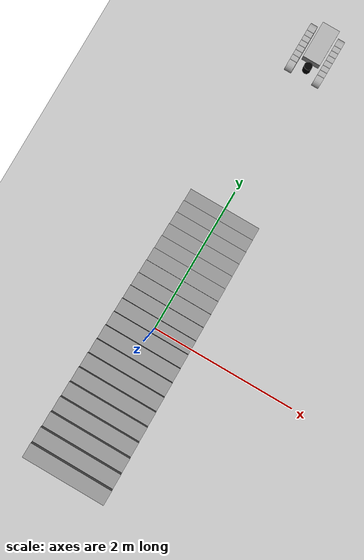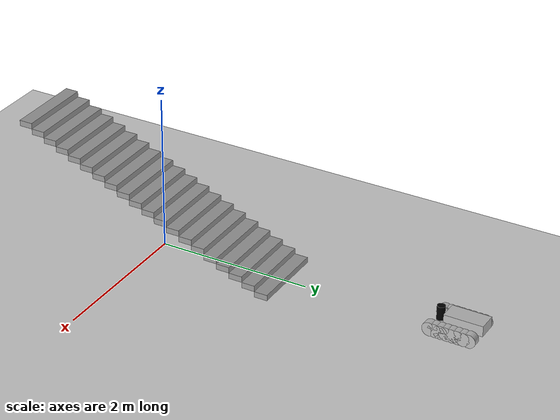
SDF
<?xml version="1.0" ?>
<sdf version="1.6">
    <world name="default">
        <gui>
            <plugin name="keyboard" filename="libKeyboardGUIPlugin.so"/>
        </gui>

        <include>
            <uri>model://sun</uri>
        </include>

        <include>
            <uri>model://ground_plane</uri>
        </include>

        <model name="wheel_tracked">
            <pose frame=''>0 4 0.1 0 0 -1.5708</pose>
            <link name='base_link'>
                <pose frame=''>0 0 0 0 -0 0</pose>
                <inertial>
                    <pose frame=''>-0.122 0 0.118 1.5708 -0 0</pose>
                    <mass>13.14</mass>
                    <inertia>
                        <ixx>0.10019</ixx>
                        <ixy>0</ixy>
                        <ixz>0</ixz>
                        <iyy>0.345043</iyy>
                        <iyz>0</iyz>
                        <izz>0.302044</izz>
                    </inertia>
                </inertial>
                <collision name='base_link_collision'>
                    <pose frame=''>-0.122 0 0.118 0 -0 0</pose>
                    <geometry>
                        <box>
                            <size>0.50017 0.24093 0.139</size>
                        </box>
                    </geometry>
                </collision>
                <visual name='base_link_visual'>
                    <pose frame=''>-0.122 0 0.118 0 -0 0</pose>
                    <geometry>
                        <box>
                            <size>0.50017 0.24093 0.139</size>
                        </box>
                    </geometry>
                </visual>
                <self_collide>0</self_collide>
                <gravity>1</gravity>
                <kinematic>0</kinematic>
            </link>

            <link name='left_track'>
                <pose frame=''>0 0.1985 0 0 -0 0</pose>
                <inertial>
                    <mass>2.06</mass>
                    <inertia>
                        <ixx>0.002731</ixx>
                        <ixy>0</ixy>
                        <ixz>0</ixz>
                        <iyy>0.032554</iyy>
                        <iyz>0</iyz>
                        <izz>0.031391</izz>
                    </inertia>
                </inertial>
                <collision name='left_track_collision'>
                    <pose frame=''>0 0 0.01855 1.5708 -0 1.5708</pose>
                    <geometry>
                        <box>
                            <size>0.009728 0.018094 0.05</size>
                        </box>
                    </geometry>
                    <surface>
                        <friction>
                            <ode>
                                <mu>0.5</mu>
                                <mu2>3.19858</mu2>
                            </ode>
                        </friction>
                        <contact>
                            <collide_bitmask>0</collide_bitmask>
                        </contact>
                    </surface>
                </collision>
            </link>
            <joint name='left_track_j' type='revolute'>
                <child>left_track</child>
                <parent>base_link</parent>
                <axis>
                    <xyz>0 1 0</xyz>
                    <limit>
                        <lower>0</lower>
                        <upper>0</upper>
                        <effort>0</effort>
                        <velocity>4</velocity>
                    </limit>
                    <use_parent_model_frame>1</use_parent_model_frame>
                </axis>
            </joint>
            <link name='left_track_wheel1'>
                <pose frame=''>0.25 0.1985 0.01855 0 -0 0</pose>
                <inertial>
                    <mass>0.5</mass>
                    <inertia>
                        <ixx>0.001</ixx>
                        <ixy>0</ixy>
                        <ixz>0</ixz>
                        <iyy>0.001</iyy>
                        <iyz>0</iyz>
                        <izz>0.001</izz>
                    </inertia>
                </inertial>
                <collision name='left_track_wheel1_collision'>
                    <pose frame=''>0 0 0 1.5708 -0 0</pose>
                    <geometry>
                        <cylinder>
                            <length>0.09728</length>
                            <radius>0.09047</radius>
                        </cylinder>
                    </geometry>
                    <surface>
                        <friction>
                            <ode>
                                <mu>0.5</mu>
                                <mu2>3.19858</mu2>
                            </ode>
                        </friction>
                    </surface>
                </collision>
                <visual name='left_track_wheel1_visual'>
                    <pose frame=''>0 0 0 1.5708 -0 0</pose>
                    <geometry>
                        <cylinder>
                            <length>0.09728</length>
                            <radius>0.09047</radius>
                        </cylinder>
                    </geometry>
                </visual>
            </link>
            <joint name='left_track_wheel1_j' type='revolute'>
                <child>left_track_wheel1</child>
                <parent>left_track</parent>
                <axis>
                    <xyz>0 1 0</xyz>
                    <limit>
                        <lower>-1e+16</lower>
                        <upper>1e+16</upper>
                    </limit>
                    <use_parent_model_frame>1</use_parent_model_frame>
                </axis>
            </joint>
            <link name='left_track_wheel2'>
                <pose frame=''>0.1786 0.1985 0.01855 0 -0 0</pose>
                <inertial>
                    <mass>0.5</mass>
                    <inertia>
                        <ixx>0.001</ixx>
                        <ixy>0</ixy>
                        <ixz>0</ixz>
                        <iyy>0.001</iyy>
                        <iyz>0</iyz>
                        <izz>0.001</izz>
                    </inertia>
                </inertial>
                <collision name='left_track_wheel2_collision'>
                    <pose frame=''>0 0 0 1.5708 -0 0</pose>
                    <geometry>
                        <cylinder>
                            <length>0.09728</length>
                            <radius>0.09047</radius>
                        </cylinder>
                    </geometry>
                    <surface>
                        <friction>
                            <ode>
                                <mu>0.5</mu>
                                <mu2>3.19858</mu2>
                            </ode>
                        </friction>
                    </surface>
                </collision>
                <visual name='left_track_wheel2_visual'>
                    <pose frame=''>0 0 0 1.5708 -0 0</pose>
                    <geometry>
                        <cylinder>
                            <length>0.09728</length>
                            <radius>0.09047</radius>
                        </cylinder>
                    </geometry>
                </visual>
            </link>
            <joint name='left_track_wheel2_j' type='revolute'>
                <child>left_track_wheel2</child>
                <parent>left_track</parent>
                <axis>
                    <xyz>0 1 0</xyz>
                    <limit>
                        <lower>-1e+16</lower>
                        <upper>1e+16</upper>
                    </limit>
                    <use_parent_model_frame>1</use_parent_model_frame>
                </axis>
            </joint>
            <link name='left_track_wheel3'>
                <pose frame=''>0.1072 0.1985 0.01855 0 -0 0</pose>
                <inertial>
                    <mass>0.5</mass>
                    <inertia>
                        <ixx>0.001</ixx>
                        <ixy>0</ixy>
                        <ixz>0</ixz>
                        <iyy>0.001</iyy>
                        <iyz>0</iyz>
                        <izz>0.001</izz>
                    </inertia>
                </inertial>
                <collision name='left_track_wheel3_collision'>
                    <pose frame=''>0 0 0 1.5708 -0 0</pose>
                    <geometry>
                        <cylinder>
                            <length>0.09728</length>
                            <radius>0.09047</radius>
                        </cylinder>
                    </geometry>
                    <surface>
                        <friction>
                            <ode>
                                <mu>0.5</mu>
                                <mu2>3.19858</mu2>
                            </ode>
                        </friction>
                    </surface>
                </collision>
                <visual name='left_track_wheel3_visual'>
                    <pose frame=''>0 0 0 1.5708 -0 0</pose>
                    <geometry>
                        <cylinder>
                            <length>0.09728</length>
                            <radius>0.09047</radius>
                        </cylinder>
                    </geometry>
                </visual>
            </link>
            <joint name='left_track_wheel3_j' type='revolute'>
                <child>left_track_wheel3</child>
                <parent>left_track</parent>
                <axis>
                    <xyz>0 1 0</xyz>
                    <limit>
                        <lower>-1e+16</lower>
                        <upper>1e+16</upper>
                    </limit>
                    <use_parent_model_frame>1</use_parent_model_frame>
                </axis>
            </joint>
            <link name='left_track_wheel4'>
                <pose frame=''>-0.25 0.1985 0.01855 0 -0 0</pose>
                <inertial>
                    <mass>0.5</mass>
                    <inertia>
                        <ixx>0.001</ixx>
                        <ixy>0</ixy>
                        <ixz>0</ixz>
                        <iyy>0.001</iyy>
                        <iyz>0</iyz>
                        <izz>0.001</izz>
                    </inertia>
                </inertial>
                <collision name='left_track_wheel4_collision'>
                    <pose frame=''>0 0 0 1.5708 -0 0</pose>
                    <geometry>
                        <cylinder>
                            <length>0.09728</length>
                            <radius>0.09047</radius>
                        </cylinder>
                    </geometry>
                    <surface>
                        <friction>
                            <ode>
                                <mu>0.5</mu>
                                <mu2>3.19858</mu2>
                            </ode>
                        </friction>
                    </surface>
                </collision>
                <visual name='left_track_wheel4_visual'>
                    <pose frame=''>0 0 0 1.5708 -0 0</pose>
                    <geometry>
                        <cylinder>
                            <length>0.09728</length>
                            <radius>0.09047</radius>
                        </cylinder>
                    </geometry>
                </visual>
            </link>
            <joint name='left_track_wheel4_j' type='revolute'>
                <child>left_track_wheel4</child>
                <parent>left_track</parent>
                <axis>
                    <xyz>0 1 0</xyz>
                    <limit>
                        <lower>-1e+16</lower>
                        <upper>1e+16</upper>
                    </limit>
                    <use_parent_model_frame>1</use_parent_model_frame>
                </axis>
            </joint>
            <link name='left_track_wheel5'>
                <pose frame=''>-0.0358 0.1985 0.01855 0 -0 0</pose>
                <inertial>
                    <mass>0.5</mass>
                    <inertia>
                        <ixx>0.001</ixx>
                        <ixy>0</ixy>
                        <ixz>0</ixz>
                        <iyy>0.001</iyy>
                        <iyz>0</iyz>
                        <izz>0.001</izz>
                    </inertia>
                </inertial>
                <collision name='left_track_wheel5_collision'>
                    <pose frame=''>0 0 0 1.5708 -0 0</pose>
                    <geometry>
                        <cylinder>
                            <length>0.09728</length>
                            <radius>0.09047</radius>
                        </cylinder>
                    </geometry>
                    <surface>
                        <friction>
                            <ode>
                                <mu>0.5</mu>
                                <mu2>3.19858</mu2>
                            </ode>
                        </friction>
                    </surface>
                </collision>
                <visual name='left_track_wheel5_visual'>
                    <pose frame=''>0 0 0 1.5708 -0 0</pose>
                    <geometry>
                        <cylinder>
                            <length>0.09728</length>
                            <radius>0.09047</radius>
                        </cylinder>
                    </geometry>
                </visual>
            </link>
            <joint name='left_track_wheel5_j' type='revolute'>
                <child>left_track_wheel5</child>
                <parent>left_track</parent>
                <axis>
                    <xyz>0 1 0</xyz>
                    <limit>
                        <lower>-1e+16</lower>
                        <upper>1e+16</upper>
                    </limit>
                    <use_parent_model_frame>1</use_parent_model_frame>
                </axis>
            </joint>
            <link name='left_track_wheel6'>
                <pose frame=''>-0.1072 0.1985 0.01855 0 -0 0</pose>
                <inertial>
                    <mass>0.5</mass>
                    <inertia>
                        <ixx>0.001</ixx>
                        <ixy>0</ixy>
                        <ixz>0</ixz>
                        <iyy>0.001</iyy>
                        <iyz>0</iyz>
                        <izz>0.001</izz>
                    </inertia>
                </inertial>
                <collision name='left_track_wheel6_collision'>
                    <pose frame=''>0 0 0 1.5708 -0 0</pose>
                    <geometry>
                        <cylinder>
                            <length>0.09728</length>
                            <radius>0.09047</radius>
                        </cylinder>
                    </geometry>
                    <surface>
                        <friction>
                            <ode>
                                <mu>0.5</mu>
                                <mu2>3.19858</mu2>
                            </ode>
                        </friction>
                    </surface>
                </collision>
                <visual name='left_track_wheel6_visual'>
                    <pose frame=''>0 0 0 1.5708 -0 0</pose>
                    <geometry>
                        <cylinder>
                            <length>0.09728</length>
                            <radius>0.09047</radius>
                        </cylinder>
                    </geometry>
                </visual>
                <gravity>1</gravity>
                <velocity_decay/>
                <kinematic>0</kinematic>
            </link>
            <joint name='left_track_wheel6_j' type='revolute'>
                <child>left_track_wheel6</child>
                <parent>left_track</parent>
                <axis>
                    <xyz>0 1 0</xyz>
                    <limit>
                        <lower>-1e+16</lower>
                        <upper>1e+16</upper>
                    </limit>
                    <use_parent_model_frame>1</use_parent_model_frame>
                </axis>
            </joint>
            <link name='left_track_wheel7'>
                <pose frame=''>-0.1786 0.1985 0.01855 0 -0 0</pose>
                <inertial>
                    <mass>0.5</mass>
                    <inertia>
                        <ixx>0.001</ixx>
                        <ixy>0</ixy>
                        <ixz>0</ixz>
                        <iyy>0.001</iyy>
                        <iyz>0</iyz>
                        <izz>0.001</izz>
                    </inertia>
                </inertial>
                <collision name='left_track_wheel7_collision'>
                    <pose frame=''>0 0 0 1.5708 -0 0</pose>
                    <geometry>
                        <cylinder>
                            <length>0.09728</length>
                            <radius>0.09047</radius>
                        </cylinder>
                    </geometry>
                    <surface>
                        <friction>
                            <ode>
                                <mu>0.5</mu>
                                <mu2>3.19858</mu2>
                            </ode>
                        </friction>
                    </surface>
                </collision>
                <visual name='left_track_wheel7_visual'>
                    <pose frame=''>0 0 0 1.5708 -0 0</pose>
                    <geometry>
                        <cylinder>
                            <length>0.09728</length>
                            <radius>0.09047</radius>
                        </cylinder>
                    </geometry>
                </visual>
            </link>
            <joint name='left_track_wheel7_j' type='revolute'>
                <child>left_track_wheel7</child>
                <parent>left_track</parent>
                <axis>
                    <xyz>0 1 0</xyz>
                    <limit>
                        <lower>-1e+16</lower>
                        <upper>1e+16</upper>
                    </limit>
                    <use_parent_model_frame>1</use_parent_model_frame>
                </axis>
            </joint>
            <link name='left_track_wheel8'>
                <pose frame=''>0.0358 0.1985 0.01855 0 -0 0</pose>
                <inertial>
                    <mass>0.5</mass>
                    <inertia>
                        <ixx>0.001</ixx>
                        <ixy>0</ixy>
                        <ixz>0</ixz>
                        <iyy>0.001</iyy>
                        <iyz>0</iyz>
                        <izz>0.001</izz>
                    </inertia>
                </inertial>
                <collision name='left_track_wheel8_collision'>
                    <pose frame=''>0 0 0 1.5708 -0 0</pose>
                    <geometry>
                        <cylinder>
                            <length>0.09728</length>
                            <radius>0.09047</radius>
                        </cylinder>
                    </geometry>
                    <surface>
                        <friction>
                            <ode>
                                <mu>0.5</mu>
                                <mu2>3.19858</mu2>
                            </ode>
                        </friction>
                    </surface>
                </collision>
                <visual name='left_track_wheel8_visual'>
                    <pose frame=''>0 0 0 1.5708 -0 0</pose>
                    <geometry>
                        <cylinder>
                            <length>0.09728</length>
                            <radius>0.09047</radius>
                        </cylinder>
                    </geometry>
                </visual>
            </link>
            <joint name='left_track_wheel8_j' type='revolute'>
                <child>left_track_wheel8</child>
                <parent>left_track</parent>
                <axis>
                    <xyz>0 1 0</xyz>
                    <limit>
                        <lower>-1e+16</lower>
                        <upper>1e+16</upper>
                    </limit>
                    <use_parent_model_frame>1</use_parent_model_frame>
                </axis>
            </joint>

            <link name='right_track'>
                <pose frame=''>0 -0.1985 0 0 -0 0</pose>
                <inertial>
                    <mass>2.06</mass>
                    <inertia>
                        <ixx>0.002731</ixx>
                        <ixy>0</ixy>
                        <ixz>0</ixz>
                        <iyy>0.032554</iyy>
                        <iyz>0</iyz>
                        <izz>0.031391</izz>
                    </inertia>
                </inertial>
                <collision name='right_track_collision'>
                    <pose frame=''>0 0 0.01855 1.5708 -0 1.5708</pose>
                    <geometry>
                        <box>
                            <size>0.009728 0.018094 0.05</size>
                        </box>
                    </geometry>
                    <surface>
                        <friction>
                            <ode>
                                <mu>0.5</mu>
                                <mu2>3.19858</mu2>
                            </ode>
                        </friction>
                        <contact>
                            <collide_bitmask>0</collide_bitmask>
                        </contact>
                    </surface>
                </collision>
            </link>
            <joint name='right_track_j' type='revolute'>
                <child>right_track</child>
                <parent>base_link</parent>
                <axis>
                    <xyz>0 1 0</xyz>
                    <limit>
                        <lower>0</lower>
                        <upper>0</upper>
                        <effort>0</effort>
                        <velocity>4</velocity>
                    </limit>
                    <use_parent_model_frame>1</use_parent_model_frame>
                </axis>
            </joint>

            <link name='right_track_wheel1'>
                <pose frame=''>0.25 -0.1985 0.01855 0 -0 0</pose>
                <inertial>
                    <mass>0.5</mass>
                    <inertia>
                        <ixx>0.001</ixx>
                        <ixy>0</ixy>
                        <ixz>0</ixz>
                        <iyy>0.001</iyy>
                        <iyz>0</iyz>
                        <izz>0.001</izz>
                    </inertia>
                </inertial>
                <collision name='right_track_wheel1_collision'>
                    <pose frame=''>0 0 0 1.5708 -0 0</pose>
                    <geometry>
                        <cylinder>
                            <length>0.09728</length>
                            <radius>0.09047</radius>
                        </cylinder>
                    </geometry>
                    <surface>
                        <friction>
                            <ode>
                                <mu>0.5</mu>
                                <mu2>3.19858</mu2>
                            </ode>
                        </friction>
                    </surface>
                </collision>
                <visual name='right_track_wheel1_visual'>
                    <pose frame=''>0 0 0 1.5708 -0 0</pose>
                    <geometry>
                        <cylinder>
                            <length>0.09728</length>
                            <radius>0.09047</radius>
                        </cylinder>
                    </geometry>
                </visual>
            </link>
            <joint name='right_track_wheel1_j' type='revolute'>
                <child>right_track_wheel1</child>
                <parent>right_track</parent>
                <axis>
                    <xyz>0 1 0</xyz>
                    <limit>
                        <lower>-1e+16</lower>
                        <upper>1e+16</upper>
                    </limit>
                    <use_parent_model_frame>1</use_parent_model_frame>
                </axis>
            </joint>
            <link name='right_track_wheel2'>
                <pose frame=''>0.1786 -0.1985 0.01855 0 -0 0</pose>
                <inertial>
                    <mass>0.5</mass>
                    <inertia>
                        <ixx>0.001</ixx>
                        <ixy>0</ixy>
                        <ixz>0</ixz>
                        <iyy>0.001</iyy>
                        <iyz>0</iyz>
                        <izz>0.001</izz>
                    </inertia>
                </inertial>
                <collision name='right_track_wheel2_collision'>
                    <pose frame=''>0 0 0 1.5708 -0 0</pose>
                    <geometry>
                        <cylinder>
                            <length>0.09728</length>
                            <radius>0.09047</radius>
                        </cylinder>
                    </geometry>
                    <surface>
                        <friction>
                            <ode>
                                <mu>0.5</mu>
                                <mu2>3.19858</mu2>
                            </ode>
                        </friction>
                    </surface>
                </collision>
                <visual name='right_track_wheel2_visual'>
                    <pose frame=''>0 0 0 1.5708 -0 0</pose>
                    <geometry>
                        <cylinder>
                            <length>0.09728</length>
                            <radius>0.09047</radius>
                        </cylinder>
                    </geometry>
                </visual>
            </link>
            <joint name='right_track_wheel2_j' type='revolute'>
                <child>right_track_wheel2</child>
                <parent>right_track</parent>
                <axis>
                    <xyz>0 1 0</xyz>
                    <limit>
                        <lower>-1e+16</lower>
                        <upper>1e+16</upper>
                    </limit>
                    <use_parent_model_frame>1</use_parent_model_frame>
                </axis>
            </joint>
            <link name='right_track_wheel3'>
                <pose frame=''>0.1072 -0.1985 0.01855 0 -0 0</pose>
                <inertial>
                    <mass>0.5</mass>
                    <inertia>
                        <ixx>0.001</ixx>
                        <ixy>0</ixy>
                        <ixz>0</ixz>
                        <iyy>0.001</iyy>
                        <iyz>0</iyz>
                        <izz>0.001</izz>
                    </inertia>
                </inertial>
                <collision name='right_track_wheel3_collision'>
                    <pose frame=''>0 0 0 1.5708 -0 0</pose>
                    <geometry>
                        <cylinder>
                            <length>0.09728</length>
                            <radius>0.09047</radius>
                        </cylinder>
                    </geometry>
                    <surface>
                        <friction>
                            <ode>
                                <mu>0.5</mu>
                                <mu2>3.19858</mu2>
                            </ode>
                        </friction>
                    </surface>
                </collision>
                <visual name='right_track_wheel3_visual'>
                    <pose frame=''>0 0 0 1.5708 -0 0</pose>
                    <geometry>
                        <cylinder>
                            <length>0.09728</length>
                            <radius>0.09047</radius>
                        </cylinder>
                    </geometry>
                </visual>
            </link>
            <joint name='right_track_wheel3_j' type='revolute'>
                <child>right_track_wheel3</child>
                <parent>right_track</parent>
                <axis>
                    <xyz>0 1 0</xyz>
                    <limit>
                        <lower>-1e+16</lower>
                        <upper>1e+16</upper>
                    </limit>
                    <use_parent_model_frame>1</use_parent_model_frame>
                </axis>
            </joint>
            <link name='right_track_wheel4'>
                <pose frame=''>-0.25 -0.1985 0.01855 0 -0 0</pose>
                <inertial>
                    <mass>0.5</mass>
                    <inertia>
                        <ixx>0.001</ixx>
                        <ixy>0</ixy>
                        <ixz>0</ixz>
                        <iyy>0.001</iyy>
                        <iyz>0</iyz>
                        <izz>0.001</izz>
                    </inertia>
                </inertial>
                <collision name='right_track_wheel4_collision'>
                    <pose frame=''>0 0 0 1.5708 -0 0</pose>
                    <geometry>
                        <cylinder>
                            <length>0.09728</length>
                            <radius>0.09047</radius>
                        </cylinder>
                    </geometry>
                    <surface>
                        <friction>
                            <ode>
                                <mu>0.5</mu>
                                <mu2>3.19858</mu2>
                            </ode>
                        </friction>
                    </surface>
                </collision>
                <visual name='right_track_wheel4_visual'>
                    <pose frame=''>0 0 0 1.5708 -0 0</pose>
                    <geometry>
                        <cylinder>
                            <length>0.09728</length>
                            <radius>0.09047</radius>
                        </cylinder>
                    </geometry>
                </visual>
            </link>
            <joint name='right_track_wheel4_j' type='revolute'>
                <child>right_track_wheel4</child>
                <parent>right_track</parent>
                <axis>
                    <xyz>0 1 0</xyz>
                    <limit>
                        <lower>-1e+16</lower>
                        <upper>1e+16</upper>
                    </limit>
                    <use_parent_model_frame>1</use_parent_model_frame>
                </axis>
            </joint>
            <link name='right_track_wheel5'>
                <pose frame=''>-0.0358 -0.1985 0.01855 0 -0 0</pose>
                <inertial>
                    <mass>0.5</mass>
                    <inertia>
                        <ixx>0.001</ixx>
                        <ixy>0</ixy>
                        <ixz>0</ixz>
                        <iyy>0.001</iyy>
                        <iyz>0</iyz>
                        <izz>0.001</izz>
                    </inertia>
                </inertial>
                <collision name='right_track_wheel5_collision'>
                    <pose frame=''>0 0 0 1.5708 -0 0</pose>
                    <geometry>
                        <cylinder>
                            <length>0.09728</length>
                            <radius>0.09047</radius>
                        </cylinder>
                    </geometry>
                    <surface>
                        <friction>
                            <ode>
                                <mu>0.5</mu>
                                <mu2>3.19858</mu2>
                            </ode>
                        </friction>
                    </surface>
                </collision>
                <visual name='right_track_wheel5_visual'>
                    <pose frame=''>0 0 0 1.5708 -0 0</pose>
                    <geometry>
                        <cylinder>
                            <length>0.09728</length>
                            <radius>0.09047</radius>
                        </cylinder>
                    </geometry>
                </visual>
            </link>
            <joint name='right_track_wheel5_j' type='revolute'>
                <child>right_track_wheel5</child>
                <parent>right_track</parent>
                <axis>
                    <xyz>0 1 0</xyz>
                    <limit>
                        <lower>-1e+16</lower>
                        <upper>1e+16</upper>
                    </limit>
                    <use_parent_model_frame>1</use_parent_model_frame>
                </axis>
            </joint>
            <link name='right_track_wheel6'>
                <pose frame=''>-0.1072 -0.1985 0.01855 0 -0 0</pose>
                <inertial>
                    <mass>0.5</mass>
                    <inertia>
                        <ixx>0.001</ixx>
                        <ixy>0</ixy>
                        <ixz>0</ixz>
                        <iyy>0.001</iyy>
                        <iyz>0</iyz>
                        <izz>0.001</izz>
                    </inertia>
                </inertial>
                <collision name='right_track_wheel6_collision'>
                    <pose frame=''>0 0 0 1.5708 -0 0</pose>
                    <geometry>
                        <cylinder>
                            <length>0.09728</length>
                            <radius>0.09047</radius>
                        </cylinder>
                    </geometry>
                    <surface>
                        <friction>
                            <ode>
                                <mu>0.5</mu>
                                <mu2>3.19858</mu2>
                            </ode>
                        </friction>
                    </surface>
                </collision>
                <visual name='right_track_wheel6_visual'>
                    <pose frame=''>0 0 0 1.5708 -0 0</pose>
                    <geometry>
                        <cylinder>
                            <length>0.09728</length>
                            <radius>0.09047</radius>
                        </cylinder>
                    </geometry>
                </visual>
            </link>
            <joint name='right_track_wheel6_j' type='revolute'>
                <child>right_track_wheel6</child>
                <parent>right_track</parent>
                <axis>
                    <xyz>0 1 0</xyz>
                    <limit>
                        <lower>-1e+16</lower>
                        <upper>1e+16</upper>
                    </limit>
                    <use_parent_model_frame>1</use_parent_model_frame>
                </axis>
            </joint>
            <link name='right_track_wheel7'>
                <pose frame=''>-0.1786 -0.1985 0.01855 0 -0 0</pose>
                <inertial>
                    <mass>0.5</mass>
                    <inertia>
                        <ixx>0.001</ixx>
                        <ixy>0</ixy>
                        <ixz>0</ixz>
                        <iyy>0.001</iyy>
                        <iyz>0</iyz>
                        <izz>0.001</izz>
                    </inertia>
                </inertial>
                <collision name='right_track_wheel7_collision'>
                    <pose frame=''>0 0 0 1.5708 -0 0</pose>
                    <geometry>
                        <cylinder>
                            <length>0.09728</length>
                            <radius>0.09047</radius>
                        </cylinder>
                    </geometry>
                    <surface>
                        <friction>
                            <ode>
                                <mu>0.5</mu>
                                <mu2>3.19858</mu2>
                            </ode>
                        </friction>
                    </surface>
                </collision>
                <visual name='right_track_wheel7_visual'>
                    <pose frame=''>0 0 0 1.5708 -0 0</pose>
                    <geometry>
                        <cylinder>
                            <length>0.09728</length>
                            <radius>0.09047</radius>
                        </cylinder>
                    </geometry>
                </visual>
            </link>
            <joint name='right_track_wheel7_j' type='revolute'>
                <child>right_track_wheel7</child>
                <parent>right_track</parent>
                <axis>
                    <xyz>0 1 0</xyz>
                    <limit>
                        <lower>-1e+16</lower>
                        <upper>1e+16</upper>
                    </limit>
                    <use_parent_model_frame>1</use_parent_model_frame>
                </axis>
            </joint>
            <link name='right_track_wheel8'>
                <pose frame=''>0.0358 -0.1985 0.01855 0 -0 0</pose>
                <inertial>
                    <mass>0.5</mass>
                    <inertia>
                        <ixx>0.001</ixx>
                        <ixy>0</ixy>
                        <ixz>0</ixz>
                        <iyy>0.001</iyy>
                        <iyz>0</iyz>
                        <izz>0.001</izz>
                    </inertia>
                </inertial>
                <collision name='right_track_wheel8_collision'>
                    <pose frame=''>0 0 0 1.5708 -0 0</pose>
                    <geometry>
                        <cylinder>
                            <length>0.09728</length>
                            <radius>0.09047</radius>
                        </cylinder>
                    </geometry>
                    <surface>
                        <friction>
                            <ode>
                                <mu>0.5</mu>
                                <mu2>3.19858</mu2>
                            </ode>
                        </friction>
                    </surface>
                </collision>
                <visual name='right_track_wheel8_visual'>
                    <pose frame=''>0 0 0 1.5708 -0 0</pose>
                    <geometry>
                        <cylinder>
                            <length>0.09728</length>
                            <radius>0.09047</radius>
                        </cylinder>
                    </geometry>
                </visual>
            </link>
            <joint name='right_track_wheel8_j' type='revolute'>
                <child>right_track_wheel8</child>
                <parent>right_track</parent>
                <axis>
                    <xyz>0 1 0</xyz>
                    <limit>
                        <lower>-1e+16</lower>
                        <upper>1e+16</upper>
                    </limit>
                    <use_parent_model_frame>1</use_parent_model_frame>
                </axis>
            </joint>

            <!-- ****************************** LIDAR *****************************    -->

            <link name="lidar_link">
                <inertial>
                <pose frame=''>0.215 0 0.33 0 0 0</pose>
                <inertia>
                    <ixx>0.001</ixx>
                    <ixy>0.000</ixy>
                    <ixz>0.000</ixz>
                    <iyy>0.001</iyy>
                    <iyz>0.000</iyz>
                    <izz>0.001</izz>
                </inertia>
                <mass>0.114</mass>
                </inertial>

                <collision name="lidar_collision">
                <pose frame=''>0.215 0 0.13 0 0 0</pose>
                <geometry>
                    <cylinder>
                    <radius>0.0508</radius>
                    <length>0.18</length>
                    </cylinder>
                </geometry>
                </collision>

                <visual name="lidar_visual">
                <pose frame=''>0.215 0 0.13 0 0 0</pose>
                <geometry>
                    <cylinder>
                    <radius>0.0508</radius>
                    <length>0.18</length>
                    </cylinder>
                </geometry>
                <material>
                    <ambient>0.0 0.0 0.0 1.0</ambient>
                    <diffuse>0.0 0.0 0.0 1.0</diffuse>
                    <specular>0.0 0.0 0.0 1.0</specular>
                    <emissive>0.0 0.0 0.0 1.0</emissive>
                </material>
                </visual>

                <sensor name="lidar" type="ray">
                <pose frame=''>0.215 0 0.215 0 0 0</pose>
                <always_on>true</always_on>
                <visualize>true</visualize>
                <update_rate>5</update_rate>
                <ray>
                    <scan>
                    <horizontal>
                        <samples>360</samples>
                        <resolution>1.00000</resolution>
                        <min_angle>0.000000</min_angle>
                        <max_angle>6.280000</max_angle>
                    </horizontal>
                    <vertical>
                        <samples>16</samples>
                        <resolution>1</resolution>
                        <min_angle>-0.361799</min_angle>
                        <max_angle>0.261799</max_angle>
                    </vertical>
                    </scan>
                    <range>
                    <min>0.120000</min>
                    <max>3.5</max>
                    <resolution>0.015000</resolution>
                    </range>
                    <noise>
                    <type>gaussian</type>
                    <mean>0.0</mean>
                    <stddev>0.01</stddev>
                    </noise>
                </ray>
                <plugin name="scan" filename="libgazebo_ros_ray_sensor.so">
                    <ros>
                    <remapping>~/out:=scan</remapping>
                    </ros>
                    <output_type>sensor_msgs/LaserScan</output_type>
                    <frame_name>lidar_link</frame_name>
                </plugin>
                </sensor>
            </link>
            <joint name="lidar_joint" type="fixed">
                <parent>base_link</parent>
                <child>lidar_link</child>
            </joint>

            <plugin name='wheel_tracked_vehicle_controller' filename='libWheelTrackedVehiclePlugin.so'>
                <left_joint>left_track_wheel1_j</left_joint>
                <right_joint>right_track_wheel1_j</right_joint>
                <left_joint>left_track_wheel2_j</left_joint>
                <right_joint>right_track_wheel2_j</right_joint>
                <left_joint>left_track_wheel3_j</left_joint>
                <right_joint>right_track_wheel3_j</right_joint>
                <left_joint>left_track_wheel4_j</left_joint>
                <right_joint>right_track_wheel4_j</right_joint>
                <left_joint>left_track_wheel5_j</left_joint>
                <right_joint>right_track_wheel5_j</right_joint>
                <left_joint>left_track_wheel6_j</left_joint>
                <right_joint>right_track_wheel6_j</right_joint>
                <left_joint>left_track_wheel7_j</left_joint>
                <right_joint>right_track_wheel7_j</right_joint>
                <left_joint>left_track_wheel8_j</left_joint>
                <right_joint>right_track_wheel8_j</right_joint>
                <!-- It'd be nicer to have a higher value here, but there's bug
                 https://github.com/osrf/gazebo/issues/2068
                 TODO The bug was already fixed but it is still broken. -->
                <track_mu>1.0</track_mu>
                <track_mu2>0.5</track_mu2>
            </plugin>

            <plugin filename="libKeysToCmdVelPlugin.so" name="keyboard_control">
                <cmd_vel_topic>~/wheel_tracked/cmd_vel</cmd_vel_topic>
                <key_controls>
                    <!-- WSAD controls + space/Enter for stop -->
                    <stop>13</stop>
                    <stop>32</stop>
                    <accelerate>119</accelerate>
                    <decelerate>115</decelerate>
                    <left>97</left>
                    <right>100</right>
                </key_controls>
            </plugin>
        </model>

        <model name='stairs_very_simple'>
            <pose frame=''>0 0 0 0 0 0</pose>
            <link name='Stairs_3'>
                <visual name='Stairs_3_Visual_0'>
                    <pose frame=''>0 1.6625 0.0375 0 -0 0</pose>
                    <geometry>
                        <box>
                            <size>1 0.175 0.075</size>
                        </box>
                    </geometry>
                    <material>
                        <script>
                            <uri>file://media/materials/scripts/gazebo.material</uri>
                            <name>Gazebo/Grey</name>
                        </script>
                        <ambient>1 1 1 1</ambient>
                    </material>
                    <meta>
                        <layer>0</layer>
                    </meta>
                </visual>
                <collision name='Stairs_3_Collision_0'>
                    <geometry>
                        <box>
                            <size>1 0.175 0.075</size>
                        </box>
                    </geometry>
                    <pose frame=''>0 1.6625 0.0375 0 -0 0</pose>
                </collision>
                <visual name='Stairs_3_Visual_1'>
                    <pose frame=''>0 1.4875 0.1125 0 -0 0</pose>
                    <geometry>
                        <box>
                            <size>1 0.175 0.075</size>
                        </box>
                    </geometry>
                    <material>
                        <script>
                            <uri>file://media/materials/scripts/gazebo.material</uri>
                            <name>Gazebo/Grey</name>
                        </script>
                        <ambient>1 1 1 1</ambient>
                    </material>
                    <meta>
                        <layer>0</layer>
                    </meta>
                </visual>
                <collision name='Stairs_3_Collision_1'>
                    <geometry>
                        <box>
                            <size>1 0.175 0.075</size>
                        </box>
                    </geometry>
                    <pose frame=''>0 1.4875 0.1125 0 -0 0</pose>
                </collision>
                <visual name='Stairs_3_Visual_2'>
                    <pose frame=''>0 1.3125 0.1875 0 -0 0</pose>
                    <geometry>
                        <box>
                            <size>1 0.175 0.075</size>
                        </box>
                    </geometry>
                    <material>
                        <script>
                            <uri>file://media/materials/scripts/gazebo.material</uri>
                            <name>Gazebo/Grey</name>
                        </script>
                        <ambient>1 1 1 1</ambient>
                    </material>
                    <meta>
                        <layer>0</layer>
                    </meta>
                </visual>
                <collision name='Stairs_3_Collision_2'>
                    <geometry>
                        <box>
                            <size>1 0.175 0.075</size>
                        </box>
                    </geometry>
                    <pose frame=''>0 1.3125 0.1875 0 -0 0</pose>
                </collision>
                <visual name='Stairs_3_Visual_3'>
                    <pose frame=''>0 1.1375 0.2625 0 -0 0</pose>
                    <geometry>
                        <box>
                            <size>1 0.175 0.075</size>
                        </box>
                    </geometry>
                    <material>
                        <script>
                            <uri>file://media/materials/scripts/gazebo.material</uri>
                            <name>Gazebo/Grey</name>
                        </script>
                        <ambient>1 1 1 1</ambient>
                    </material>
                    <meta>
                        <layer>0</layer>
                    </meta>
                </visual>
                <collision name='Stairs_3_Collision_3'>
                    <geometry>
                        <box>
                            <size>1 0.175 0.075</size>
                        </box>
                    </geometry>
                    <pose frame=''>0 1.1375 0.2625 0 -0 0</pose>
                </collision>
                <visual name='Stairs_3_Visual_4'>
                    <pose frame=''>0 0.9625 0.3375 0 -0 0</pose>
                    <geometry>
                        <box>
                            <size>1 0.175 0.075</size>
                        </box>
                    </geometry>
                    <material>
                        <script>
                            <uri>file://media/materials/scripts/gazebo.material</uri>
                            <name>Gazebo/Grey</name>
                        </script>
                        <ambient>1 1 1 1</ambient>
                    </material>
                    <meta>
                        <layer>0</layer>
                    </meta>
                </visual>
                <collision name='Stairs_3_Collision_4'>
                    <geometry>
                        <box>
                            <size>1 0.175 0.075</size>
                        </box>
                    </geometry>
                    <pose frame=''>0 0.9625 0.3375 0 -0 0</pose>
                </collision>
                <visual name='Stairs_3_Visual_5'>
                    <pose frame=''>0 0.7875 0.4125 0 -0 0</pose>
                    <geometry>
                        <box>
                            <size>1 0.175 0.075</size>
                        </box>
                    </geometry>
                    <material>
                        <script>
                            <uri>file://media/materials/scripts/gazebo.material</uri>
                            <name>Gazebo/Grey</name>
                        </script>
                        <ambient>1 1 1 1</ambient>
                    </material>
                    <meta>
                        <layer>0</layer>
                    </meta>
                </visual>
                <collision name='Stairs_3_Collision_5'>
                    <geometry>
                        <box>
                            <size>1 0.175 0.075</size>
                        </box>
                    </geometry>
                    <pose frame=''>0 0.7875 0.4125 0 -0 0</pose>
                </collision>
                <visual name='Stairs_3_Visual_6'>
                    <pose frame=''>0 0.6125 0.4875 0 -0 0</pose>
                    <geometry>
                        <box>
                            <size>1 0.175 0.075</size>
                        </box>
                    </geometry>
                    <material>
                        <script>
                            <uri>file://media/materials/scripts/gazebo.material</uri>
                            <name>Gazebo/Grey</name>
                        </script>
                        <ambient>1 1 1 1</ambient>
                    </material>
                    <meta>
                        <layer>0</layer>
                    </meta>
                </visual>
                <collision name='Stairs_3_Collision_6'>
                    <geometry>
                        <box>
                            <size>1 0.175 0.075</size>
                        </box>
                    </geometry>
                    <pose frame=''>0 0.6125 0.4875 0 -0 0</pose>
                </collision>
                <visual name='Stairs_3_Visual_7'>
                    <pose frame=''>0 0.4375 0.5625 0 -0 0</pose>
                    <geometry>
                        <box>
                            <size>1 0.175 0.075</size>
                        </box>
                    </geometry>
                    <material>
                        <script>
                            <uri>file://media/materials/scripts/gazebo.material</uri>
                            <name>Gazebo/Grey</name>
                        </script>
                        <ambient>1 1 1 1</ambient>
                    </material>
                    <meta>
                        <layer>0</layer>
                    </meta>
                </visual>
                <collision name='Stairs_3_Collision_7'>
                    <geometry>
                        <box>
                            <size>1 0.175 0.075</size>
                        </box>
                    </geometry>
                    <pose frame=''>0 0.4375 0.5625 0 -0 0</pose>
                </collision>
                <visual name='Stairs_3_Visual_8'>
                    <pose frame=''>0 0.2625 0.6375 0 -0 0</pose>
                    <geometry>
                        <box>
                            <size>1 0.175 0.075</size>
                        </box>
                    </geometry>
                    <material>
                        <script>
                            <uri>file://media/materials/scripts/gazebo.material</uri>
                            <name>Gazebo/Grey</name>
                        </script>
                        <ambient>1 1 1 1</ambient>
                    </material>
                    <meta>
                        <layer>0</layer>
                    </meta>
                </visual>
                <collision name='Stairs_3_Collision_8'>
                    <geometry>
                        <box>
                            <size>1 0.175 0.075</size>
                        </box>
                    </geometry>
                    <pose frame=''>0 0.2625 0.6375 0 -0 0</pose>
                </collision>
                <visual name='Stairs_3_Visual_9'>
                    <pose frame=''>0 0.0875 0.7125 0 -0 0</pose>
                    <geometry>
                        <box>
                            <size>1 0.175 0.075</size>
                        </box>
                    </geometry>
                    <material>
                        <script>
                            <uri>file://media/materials/scripts/gazebo.material</uri>
                            <name>Gazebo/Grey</name>
                        </script>
                        <ambient>1 1 1 1</ambient>
                    </material>
                    <meta>
                        <layer>0</layer>
                    </meta>
                </visual>
                <collision name='Stairs_3_Collision_9'>
                    <geometry>
                        <box>
                            <size>1 0.175 0.075</size>
                        </box>
                    </geometry>
                    <pose frame=''>0 0.0875 0.7125 0 -0 0</pose>
                </collision>
                <visual name='Stairs_3_Visual_10'>
                    <pose frame=''>0 -0.0875 0.7875 0 -0 0</pose>
                    <geometry>
                        <box>
                            <size>1 0.175 0.075</size>
                        </box>
                    </geometry>
                    <material>
                        <script>
                            <uri>file://media/materials/scripts/gazebo.material</uri>
                            <name>Gazebo/Grey</name>
                        </script>
                        <ambient>1 1 1 1</ambient>
                    </material>
                    <meta>
                        <layer>0</layer>
                    </meta>
                </visual>
                <collision name='Stairs_3_Collision_10'>
                    <geometry>
                        <box>
                            <size>1 0.175 0.075</size>
                        </box>
                    </geometry>
                    <pose frame=''>0 -0.0875 0.7875 0 -0 0</pose>
                </collision>
                <visual name='Stairs_3_Visual_11'>
                    <pose frame=''>0 -0.2625 0.8625 0 -0 0</pose>
                    <geometry>
                        <box>
                            <size>1 0.175 0.075</size>
                        </box>
                    </geometry>
                    <material>
                        <script>
                            <uri>file://media/materials/scripts/gazebo.material</uri>
                            <name>Gazebo/Grey</name>
                        </script>
                        <ambient>1 1 1 1</ambient>
                    </material>
                    <meta>
                        <layer>0</layer>
                    </meta>
                </visual>
                <collision name='Stairs_3_Collision_11'>
                    <geometry>
                        <box>
                            <size>1 0.175 0.075</size>
                        </box>
                    </geometry>
                    <pose frame=''>0 -0.2625 0.8625 0 -0 0</pose>
                </collision>
                <visual name='Stairs_3_Visual_12'>
                    <pose frame=''>0 -0.4375 0.9375 0 -0 0</pose>
                    <geometry>
                        <box>
                            <size>1 0.175 0.075</size>
                        </box>
                    </geometry>
                    <material>
                        <script>
                            <uri>file://media/materials/scripts/gazebo.material</uri>
                            <name>Gazebo/Grey</name>
                        </script>
                        <ambient>1 1 1 1</ambient>
                    </material>
                    <meta>
                        <layer>0</layer>
                    </meta>
                </visual>
                <collision name='Stairs_3_Collision_12'>
                    <geometry>
                        <box>
                            <size>1 0.175 0.075</size>
                        </box>
                    </geometry>
                    <pose frame=''>0 -0.4375 0.9375 0 -0 0</pose>
                </collision>
                <visual name='Stairs_3_Visual_13'>
                    <pose frame=''>0 -0.6125 1.0125 0 -0 0</pose>
                    <geometry>
                        <box>
                            <size>1 0.175 0.075</size>
                        </box>
                    </geometry>
                    <material>
                        <script>
                            <uri>file://media/materials/scripts/gazebo.material</uri>
                            <name>Gazebo/Grey</name>
                        </script>
                        <ambient>1 1 1 1</ambient>
                    </material>
                    <meta>
                        <layer>0</layer>
                    </meta>
                </visual>
                <collision name='Stairs_3_Collision_13'>
                    <geometry>
                        <box>
                            <size>1 0.175 0.075</size>
                        </box>
                    </geometry>
                    <pose frame=''>0 -0.6125 1.0125 0 -0 0</pose>
                </collision>
                <visual name='Stairs_3_Visual_14'>
                    <pose frame=''>0 -0.7875 1.0875 0 -0 0</pose>
                    <geometry>
                        <box>
                            <size>1 0.175 0.075</size>
                        </box>
                    </geometry>
                    <material>
                        <script>
                            <uri>file://media/materials/scripts/gazebo.material</uri>
                            <name>Gazebo/Grey</name>
                        </script>
                        <ambient>1 1 1 1</ambient>
                    </material>
                    <meta>
                        <layer>0</layer>
                    </meta>
                </visual>
                <collision name='Stairs_3_Collision_14'>
                    <geometry>
                        <box>
                            <size>1 0.175 0.075</size>
                        </box>
                    </geometry>
                    <pose frame=''>0 -0.7875 1.0875 0 -0 0</pose>
                </collision>
                <visual name='Stairs_3_Visual_15'>
                    <pose frame=''>0 -0.9625 1.1625 0 -0 0</pose>
                    <geometry>
                        <box>
                            <size>1 0.175 0.075</size>
                        </box>
                    </geometry>
                    <material>
                        <script>
                            <uri>file://media/materials/scripts/gazebo.material</uri>
                            <name>Gazebo/Grey</name>
                        </script>
                        <ambient>1 1 1 1</ambient>
                    </material>
                    <meta>
                        <layer>0</layer>
                    </meta>
                </visual>
                <collision name='Stairs_3_Collision_15'>
                    <geometry>
                        <box>
                            <size>1 0.175 0.075</size>
                        </box>
                    </geometry>
                    <pose frame=''>0 -0.9625 1.1625 0 -0 0</pose>
                </collision>
                <visual name='Stairs_3_Visual_16'>
                    <pose frame=''>0 -1.1375 1.2375 0 -0 0</pose>
                    <geometry>
                        <box>
                            <size>1 0.175 0.075</size>
                        </box>
                    </geometry>
                    <material>
                        <script>
                            <uri>file://media/materials/scripts/gazebo.material</uri>
                            <name>Gazebo/Grey</name>
                        </script>
                        <ambient>1 1 1 1</ambient>
                    </material>
                    <meta>
                        <layer>0</layer>
                    </meta>
                </visual>
                <collision name='Stairs_3_Collision_16'>
                    <geometry>
                        <box>
                            <size>1 0.175 0.075</size>
                        </box>
                    </geometry>
                    <pose frame=''>0 -1.1375 1.2375 0 -0 0</pose>
                </collision>
                <visual name='Stairs_3_Visual_17'>
                    <pose frame=''>0 -1.3125 1.3125 0 -0 0</pose>
                    <geometry>
                        <box>
                            <size>1 0.175 0.075</size>
                        </box>
                    </geometry>
                    <material>
                        <script>
                            <uri>file://media/materials/scripts/gazebo.material</uri>
                            <name>Gazebo/Grey</name>
                        </script>
                        <ambient>1 1 1 1</ambient>
                    </material>
                    <meta>
                        <layer>0</layer>
                    </meta>
                </visual>
                <collision name='Stairs_3_Collision_17'>
                    <geometry>
                        <box>
                            <size>1 0.175 0.075</size>
                        </box>
                    </geometry>
                    <pose frame=''>0 -1.3125 1.3125 0 -0 0</pose>
                </collision>
                <visual name='Stairs_3_Visual_18'>
                    <pose frame=''>0 -1.4875 1.3875 0 -0 0</pose>
                    <geometry>
                        <box>
                            <size>1 0.175 0.075</size>
                        </box>
                    </geometry>
                    <material>
                        <script>
                            <uri>file://media/materials/scripts/gazebo.material</uri>
                            <name>Gazebo/Grey</name>
                        </script>
                        <ambient>1 1 1 1</ambient>
                    </material>
                    <meta>
                        <layer>0</layer>
                    </meta>
                </visual>
                <collision name='Stairs_3_Collision_18'>
                    <geometry>
                        <box>
                            <size>1 0.175 0.075</size>
                        </box>
                    </geometry>
                    <pose frame=''>0 -1.4875 1.3875 0 -0 0</pose>
                </collision>
                <visual name='Stairs_3_Visual_19'>
                    <pose frame=''>0 -1.6625 1.4625 0 -0 0</pose>
                    <geometry>
                        <box>
                            <size>1 0.175 0.075</size>
                        </box>
                    </geometry>
                    <material>
                        <script>
                            <uri>file://media/materials/scripts/gazebo.material</uri>
                            <name>Gazebo/Grey</name>
                        </script>
                        <ambient>1 1 1 1</ambient>
                    </material>
                    <meta>
                        <layer>0</layer>
                    </meta>
                </visual>
                <collision name='Stairs_3_Collision_19'>
                    <geometry>
                        <box>
                            <size>1 0.175 0.075</size>
                        </box>
                    </geometry>
                    <pose frame=''>0 -1.6625 1.4625 0 -0 0</pose>
                </collision>
            </link>
            <static>1</static>
        </model>
    </world>
</sdf>
